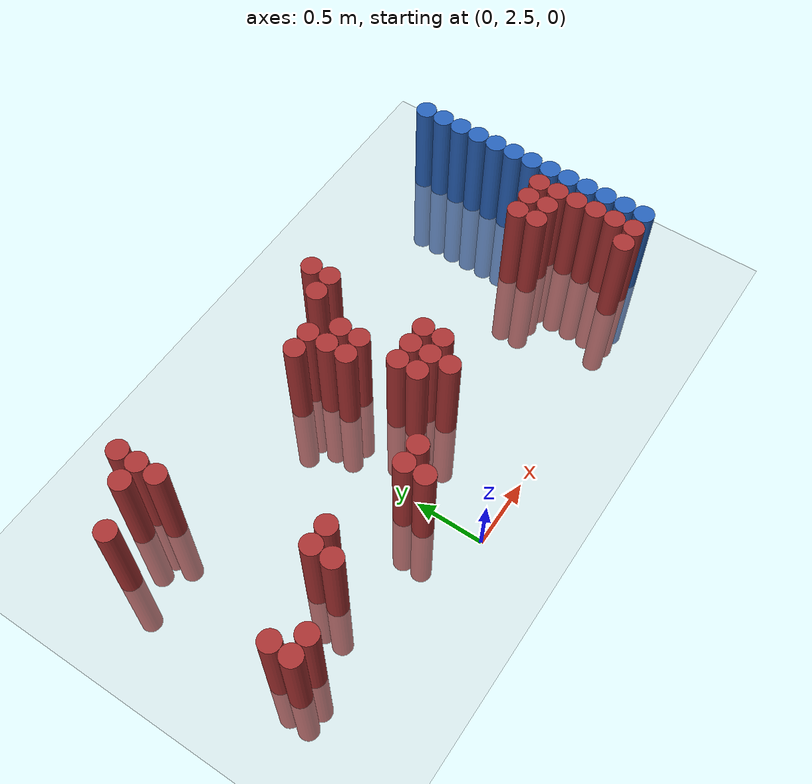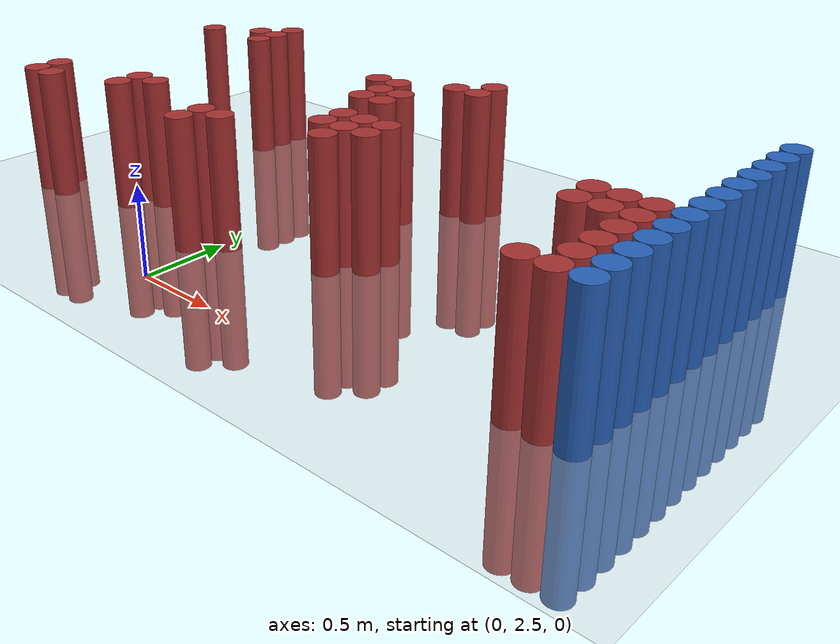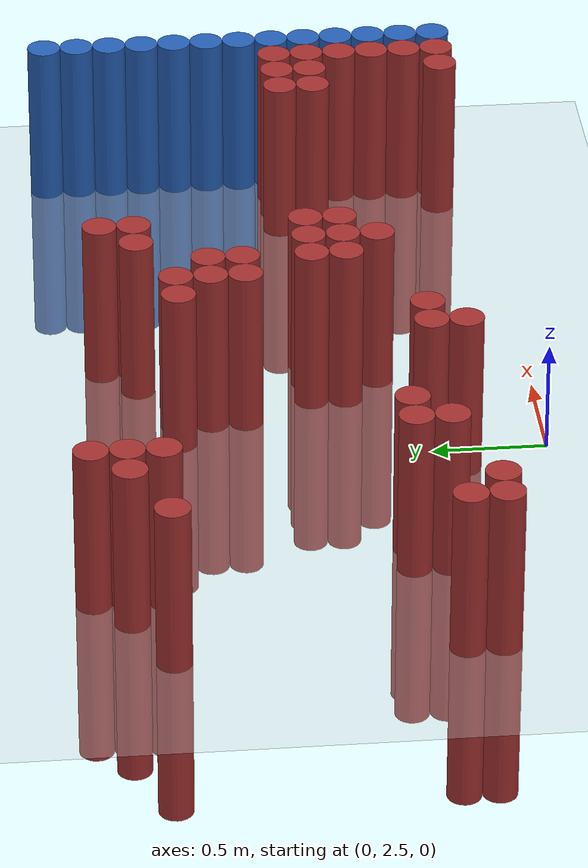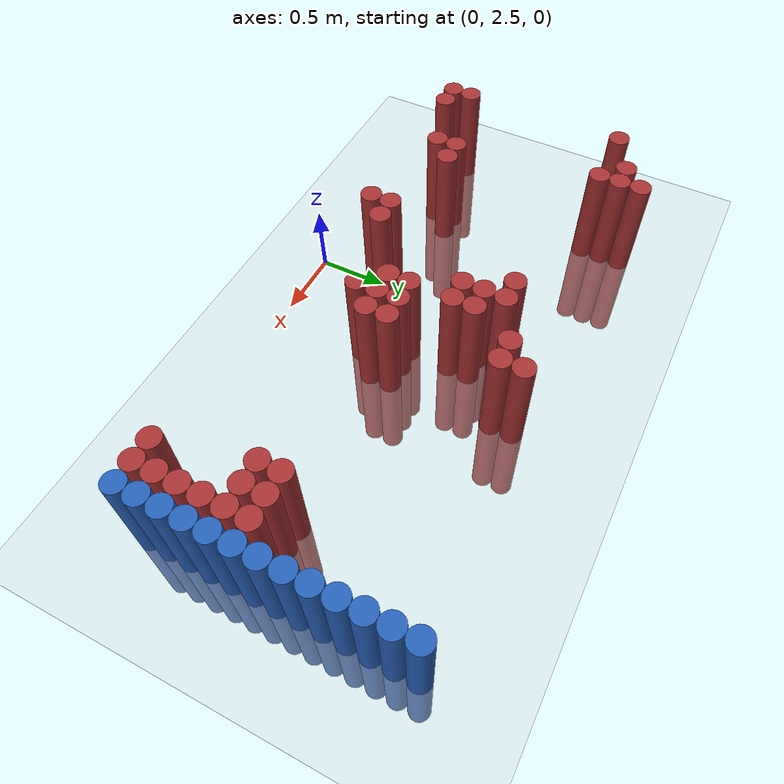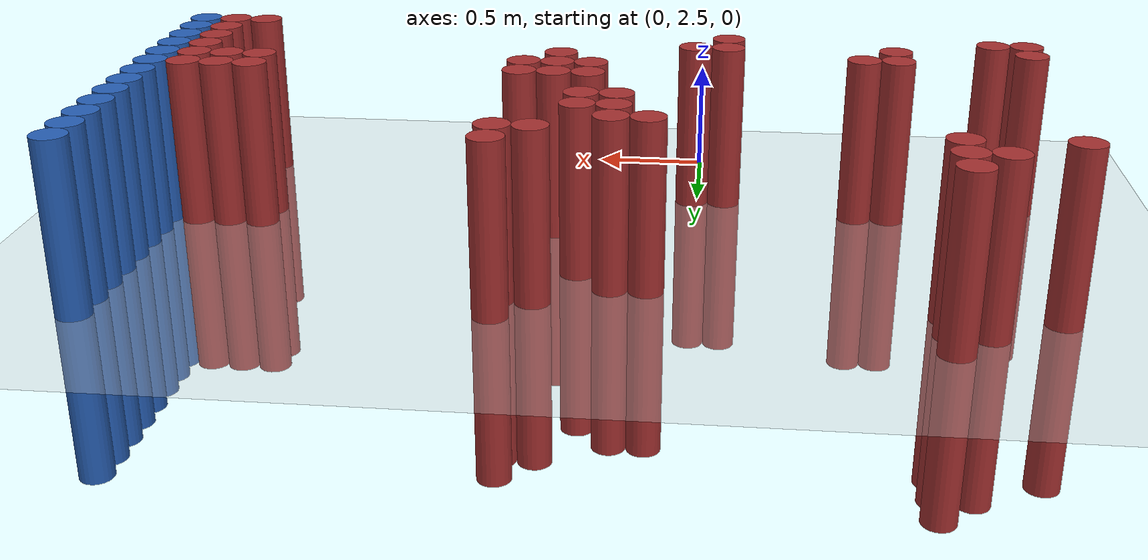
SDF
<sdf version="1.6">
 <world name="default">
  <model name="ground_plane">
   <static>1</static>
   <link name="link">
    <collision name="collision">
     <geometry><plane><normal>0 0 1</normal><size>100 100</size></plane></geometry>
     <surface><friction><ode><mu>100</mu><mu2>50</mu2></ode></friction></surface>
    </collision>
    <visual name="visual">
     <cast_shadows>0</cast_shadows>
     <geometry><plane><normal>0 0 1</normal><size>100 100</size></plane></geometry>
     <material>
      <script><uri>file://media/materials/scripts/gazebo.material</uri><name>Gazebo/Grey</name></script>
     </material>
    </visual>
   </link>
  </model>
  <model name="unit_cylinder_159">
   <static>1</static>
   <pose>-1.475000 2.875000 0.000000 0.000000 0.000000 0.000000</pose>
   <link name="link">
    <inertial>
     <mass>1</mass>
     <inertia><ixx>0.145833</ixx><ixy>0</ixy><ixz>0</ixz><iyy>0.145833</iyy><iyz>0</iyz><izz>0.125</izz></inertia>
    </inertial>
    <collision name="collision">
     <geometry><cylinder><radius>0.075000</radius><length>1.5</length></cylinder></geometry>
    </collision>
    <visual name="visual">
     <geometry><cylinder><radius>0.075000</radius><length>1.5</length></cylinder></geometry>
     <material>
      <ambient>0.648000 0.192000 0.192000 1</ambient>
      <diffuse>0.648000 0.192000 0.192000 1</diffuse>
     </material>
     <material>
      <script><name>Gazebo/Grey</name><uri>file://media/materials/scripts/gazebo.material</uri></script>
     </material>
    </visual>
   </link>
  </model>
  <model name="unit_cylinder_160">
   <static>1</static>
   <pose>-1.475000 3.025000 0.000000 0.000000 0.000000 0.000000</pose>
   <link name="link">
    <inertial>
     <mass>1</mass>
     <inertia><ixx>0.145833</ixx><ixy>0</ixy><ixz>0</ixz><iyy>0.145833</iyy><iyz>0</iyz><izz>0.125</izz></inertia>
    </inertial>
    <collision name="collision">
     <geometry><cylinder><radius>0.075000</radius><length>1.5</length></cylinder></geometry>
    </collision>
    <visual name="visual">
     <geometry><cylinder><radius>0.075000</radius><length>1.5</length></cylinder></geometry>
     <material>
      <ambient>0.648000 0.192000 0.192000 1</ambient>
      <diffuse>0.648000 0.192000 0.192000 1</diffuse>
     </material>
     <material>
      <script><name>Gazebo/Grey</name><uri>file://media/materials/scripts/gazebo.material</uri></script>
     </material>
    </visual>
   </link>
  </model>
  <model name="unit_cylinder_161">
   <static>1</static>
   <pose>-1.475000 4.225000 0.000000 0.000000 0.000000 0.000000</pose>
   <link name="link">
    <inertial>
     <mass>1</mass>
     <inertia><ixx>0.145833</ixx><ixy>0</ixy><ixz>0</ixz><iyy>0.145833</iyy><iyz>0</iyz><izz>0.125</izz></inertia>
    </inertial>
    <collision name="collision">
     <geometry><cylinder><radius>0.075000</radius><length>1.5</length></cylinder></geometry>
    </collision>
    <visual name="visual">
     <geometry><cylinder><radius>0.075000</radius><length>1.5</length></cylinder></geometry>
     <material>
      <ambient>0.648000 0.192000 0.192000 1</ambient>
      <diffuse>0.648000 0.192000 0.192000 1</diffuse>
     </material>
     <material>
      <script><name>Gazebo/Grey</name><uri>file://media/materials/scripts/gazebo.material</uri></script>
     </material>
    </visual>
   </link>
  </model>
  <model name="unit_cylinder_164">
   <static>1</static>
   <pose>-1.325000 2.875000 0.000000 0.000000 0.000000 0.000000</pose>
   <link name="link">
    <inertial>
     <mass>1</mass>
     <inertia><ixx>0.145833</ixx><ixy>0</ixy><ixz>0</ixz><iyy>0.145833</iyy><iyz>0</iyz><izz>0.125</izz></inertia>
    </inertial>
    <collision name="collision">
     <geometry><cylinder><radius>0.075000</radius><length>1.5</length></cylinder></geometry>
    </collision>
    <visual name="visual">
     <geometry><cylinder><radius>0.075000</radius><length>1.5</length></cylinder></geometry>
     <material>
      <ambient>0.648000 0.192000 0.192000 1</ambient>
      <diffuse>0.648000 0.192000 0.192000 1</diffuse>
     </material>
     <material>
      <script><name>Gazebo/Grey</name><uri>file://media/materials/scripts/gazebo.material</uri></script>
     </material>
    </visual>
   </link>
  </model>
  <model name="unit_cylinder_168">
   <static>1</static>
   <pose>-1.175000 4.375000 0.000000 0.000000 0.000000 0.000000</pose>
   <link name="link">
    <inertial>
     <mass>1</mass>
     <inertia><ixx>0.145833</ixx><ixy>0</ixy><ixz>0</ixz><iyy>0.145833</iyy><iyz>0</iyz><izz>0.125</izz></inertia>
    </inertial>
    <collision name="collision">
     <geometry><cylinder><radius>0.075000</radius><length>1.5</length></cylinder></geometry>
    </collision>
    <visual name="visual">
     <geometry><cylinder><radius>0.075000</radius><length>1.5</length></cylinder></geometry>
     <material>
      <ambient>0.648000 0.192000 0.192000 1</ambient>
      <diffuse>0.648000 0.192000 0.192000 1</diffuse>
     </material>
     <material>
      <script><name>Gazebo/Grey</name><uri>file://media/materials/scripts/gazebo.material</uri></script>
     </material>
    </visual>
   </link>
  </model>
  <model name="unit_cylinder_171">
   <static>1</static>
   <pose>-1.025000 4.225000 0.000000 0.000000 0.000000 0.000000</pose>
   <link name="link">
    <inertial>
     <mass>1</mass>
     <inertia><ixx>0.145833</ixx><ixy>0</ixy><ixz>0</ixz><iyy>0.145833</iyy><iyz>0</iyz><izz>0.125</izz></inertia>
    </inertial>
    <collision name="collision">
     <geometry><cylinder><radius>0.075000</radius><length>1.5</length></cylinder></geometry>
    </collision>
    <visual name="visual">
     <geometry><cylinder><radius>0.075000</radius><length>1.5</length></cylinder></geometry>
     <material>
      <ambient>0.648000 0.192000 0.192000 1</ambient>
      <diffuse>0.648000 0.192000 0.192000 1</diffuse>
     </material>
     <material>
      <script><name>Gazebo/Grey</name><uri>file://media/materials/scripts/gazebo.material</uri></script>
     </material>
    </visual>
   </link>
  </model>
  <model name="unit_cylinder_172">
   <static>1</static>
   <pose>-1.025000 4.375000 0.000000 0.000000 0.000000 0.000000</pose>
   <link name="link">
    <inertial>
     <mass>1</mass>
     <inertia><ixx>0.145833</ixx><ixy>0</ixy><ixz>0</ixz><iyy>0.145833</iyy><iyz>0</iyz><izz>0.125</izz></inertia>
    </inertial>
    <collision name="collision">
     <geometry><cylinder><radius>0.075000</radius><length>1.5</length></cylinder></geometry>
    </collision>
    <visual name="visual">
     <geometry><cylinder><radius>0.075000</radius><length>1.5</length></cylinder></geometry>
     <material>
      <ambient>0.648000 0.192000 0.192000 1</ambient>
      <diffuse>0.648000 0.192000 0.192000 1</diffuse>
     </material>
     <material>
      <script><name>Gazebo/Grey</name><uri>file://media/materials/scripts/gazebo.material</uri></script>
     </material>
    </visual>
   </link>
  </model>
  <model name="unit_cylinder_173">
   <static>1</static>
   <pose>-1.025000 4.525000 0.000000 0.000000 0.000000 0.000000</pose>
   <link name="link">
    <inertial>
     <mass>1</mass>
     <inertia><ixx>0.145833</ixx><ixy>0</ixy><ixz>0</ixz><iyy>0.145833</iyy><iyz>0</iyz><izz>0.125</izz></inertia>
    </inertial>
    <collision name="collision">
     <geometry><cylinder><radius>0.075000</radius><length>1.5</length></cylinder></geometry>
    </collision>
    <visual name="visual">
     <geometry><cylinder><radius>0.075000</radius><length>1.5</length></cylinder></geometry>
     <material>
      <ambient>0.648000 0.192000 0.192000 1</ambient>
      <diffuse>0.648000 0.192000 0.192000 1</diffuse>
     </material>
     <material>
      <script><name>Gazebo/Grey</name><uri>file://media/materials/scripts/gazebo.material</uri></script>
     </material>
    </visual>
   </link>
  </model>
  <model name="unit_cylinder_176">
   <static>1</static>
   <pose>-0.875000 3.025000 0.000000 0.000000 0.000000 0.000000</pose>
   <link name="link">
    <inertial>
     <mass>1</mass>
     <inertia><ixx>0.145833</ixx><ixy>0</ixy><ixz>0</ixz><iyy>0.145833</iyy><iyz>0</iyz><izz>0.125</izz></inertia>
    </inertial>
    <collision name="collision">
     <geometry><cylinder><radius>0.075000</radius><length>1.5</length></cylinder></geometry>
    </collision>
    <visual name="visual">
     <geometry><cylinder><radius>0.075000</radius><length>1.5</length></cylinder></geometry>
     <material>
      <ambient>0.648000 0.192000 0.192000 1</ambient>
      <diffuse>0.648000 0.192000 0.192000 1</diffuse>
     </material>
     <material>
      <script><name>Gazebo/Grey</name><uri>file://media/materials/scripts/gazebo.material</uri></script>
     </material>
    </visual>
   </link>
  </model>
  <model name="unit_cylinder_177">
   <static>1</static>
   <pose>-0.875000 3.175000 0.000000 0.000000 0.000000 0.000000</pose>
   <link name="link">
    <inertial>
     <mass>1</mass>
     <inertia><ixx>0.145833</ixx><ixy>0</ixy><ixz>0</ixz><iyy>0.145833</iyy><iyz>0</iyz><izz>0.125</izz></inertia>
    </inertial>
    <collision name="collision">
     <geometry><cylinder><radius>0.075000</radius><length>1.5</length></cylinder></geometry>
    </collision>
    <visual name="visual">
     <geometry><cylinder><radius>0.075000</radius><length>1.5</length></cylinder></geometry>
     <material>
      <ambient>0.648000 0.192000 0.192000 1</ambient>
      <diffuse>0.648000 0.192000 0.192000 1</diffuse>
     </material>
     <material>
      <script><name>Gazebo/Grey</name><uri>file://media/materials/scripts/gazebo.material</uri></script>
     </material>
    </visual>
   </link>
  </model>
  <model name="unit_cylinder_182">
   <static>1</static>
   <pose>-0.725000 3.175000 0.000000 0.000000 0.000000 0.000000</pose>
   <link name="link">
    <inertial>
     <mass>1</mass>
     <inertia><ixx>0.145833</ixx><ixy>0</ixy><ixz>0</ixz><iyy>0.145833</iyy><iyz>0</iyz><izz>0.125</izz></inertia>
    </inertial>
    <collision name="collision">
     <geometry><cylinder><radius>0.075000</radius><length>1.5</length></cylinder></geometry>
    </collision>
    <visual name="visual">
     <geometry><cylinder><radius>0.075000</radius><length>1.5</length></cylinder></geometry>
     <material>
      <ambient>0.648000 0.192000 0.192000 1</ambient>
      <diffuse>0.648000 0.192000 0.192000 1</diffuse>
     </material>
     <material>
      <script><name>Gazebo/Grey</name><uri>file://media/materials/scripts/gazebo.material</uri></script>
     </material>
    </visual>
   </link>
  </model>
  <model name="unit_cylinder_191">
   <static>1</static>
   <pose>-0.125000 2.875000 0.000000 0.000000 0.000000 0.000000</pose>
   <link name="link">
    <inertial>
     <mass>1</mass>
     <inertia><ixx>0.145833</ixx><ixy>0</ixy><ixz>0</ixz><iyy>0.145833</iyy><iyz>0</iyz><izz>0.125</izz></inertia>
    </inertial>
    <collision name="collision">
     <geometry><cylinder><radius>0.075000</radius><length>1.5</length></cylinder></geometry>
    </collision>
    <visual name="visual">
     <geometry><cylinder><radius>0.075000</radius><length>1.5</length></cylinder></geometry>
     <material>
      <ambient>0.648000 0.192000 0.192000 1</ambient>
      <diffuse>0.648000 0.192000 0.192000 1</diffuse>
     </material>
     <material>
      <script><name>Gazebo/Grey</name><uri>file://media/materials/scripts/gazebo.material</uri></script>
     </material>
    </visual>
   </link>
  </model>
  <model name="unit_cylinder_192">
   <static>1</static>
   <pose>-0.125000 3.025000 0.000000 0.000000 0.000000 0.000000</pose>
   <link name="link">
    <inertial>
     <mass>1</mass>
     <inertia><ixx>0.145833</ixx><ixy>0</ixy><ixz>0</ixz><iyy>0.145833</iyy><iyz>0</iyz><izz>0.125</izz></inertia>
    </inertial>
    <collision name="collision">
     <geometry><cylinder><radius>0.075000</radius><length>1.5</length></cylinder></geometry>
    </collision>
    <visual name="visual">
     <geometry><cylinder><radius>0.075000</radius><length>1.5</length></cylinder></geometry>
     <material>
      <ambient>0.648000 0.192000 0.192000 1</ambient>
      <diffuse>0.648000 0.192000 0.192000 1</diffuse>
     </material>
     <material>
      <script><name>Gazebo/Grey</name><uri>file://media/materials/scripts/gazebo.material</uri></script>
     </material>
    </visual>
   </link>
  </model>
  <model name="unit_cylinder_193">
   <static>1</static>
   <pose>0.025000 3.025000 0.000000 0.000000 0.000000 0.000000</pose>
   <link name="link">
    <inertial>
     <mass>1</mass>
     <inertia><ixx>0.145833</ixx><ixy>0</ixy><ixz>0</ixz><iyy>0.145833</iyy><iyz>0</iyz><izz>0.125</izz></inertia>
    </inertial>
    <collision name="collision">
     <geometry><cylinder><radius>0.075000</radius><length>1.5</length></cylinder></geometry>
    </collision>
    <visual name="visual">
     <geometry><cylinder><radius>0.075000</radius><length>1.5</length></cylinder></geometry>
     <material>
      <ambient>0.648000 0.192000 0.192000 1</ambient>
      <diffuse>0.648000 0.192000 0.192000 1</diffuse>
     </material>
     <material>
      <script><name>Gazebo/Grey</name><uri>file://media/materials/scripts/gazebo.material</uri></script>
     </material>
    </visual>
   </link>
  </model>
  <model name="unit_cylinder_194">
   <static>1</static>
   <pose>0.175000 4.075000 0.000000 0.000000 0.000000 0.000000</pose>
   <link name="link">
    <inertial>
     <mass>1</mass>
     <inertia><ixx>0.145833</ixx><ixy>0</ixy><ixz>0</ixz><iyy>0.145833</iyy><iyz>0</iyz><izz>0.125</izz></inertia>
    </inertial>
    <collision name="collision">
     <geometry><cylinder><radius>0.075000</radius><length>1.5</length></cylinder></geometry>
    </collision>
    <visual name="visual">
     <geometry><cylinder><radius>0.075000</radius><length>1.5</length></cylinder></geometry>
     <material>
      <ambient>0.648000 0.192000 0.192000 1</ambient>
      <diffuse>0.648000 0.192000 0.192000 1</diffuse>
     </material>
     <material>
      <script><name>Gazebo/Grey</name><uri>file://media/materials/scripts/gazebo.material</uri></script>
     </material>
    </visual>
   </link>
  </model>
  <model name="unit_cylinder_195">
   <static>1</static>
   <pose>0.325000 3.775000 0.000000 0.000000 0.000000 0.000000</pose>
   <link name="link">
    <inertial>
     <mass>1</mass>
     <inertia><ixx>0.145833</ixx><ixy>0</ixy><ixz>0</ixz><iyy>0.145833</iyy><iyz>0</iyz><izz>0.125</izz></inertia>
    </inertial>
    <collision name="collision">
     <geometry><cylinder><radius>0.075000</radius><length>1.5</length></cylinder></geometry>
    </collision>
    <visual name="visual">
     <geometry><cylinder><radius>0.075000</radius><length>1.5</length></cylinder></geometry>
     <material>
      <ambient>0.648000 0.192000 0.192000 1</ambient>
      <diffuse>0.648000 0.192000 0.192000 1</diffuse>
     </material>
     <material>
      <script><name>Gazebo/Grey</name><uri>file://media/materials/scripts/gazebo.material</uri></script>
     </material>
    </visual>
   </link>
  </model>
  <model name="unit_cylinder_196">
   <static>1</static>
   <pose>0.325000 3.925000 0.000000 0.000000 0.000000 0.000000</pose>
   <link name="link">
    <inertial>
     <mass>1</mass>
     <inertia><ixx>0.145833</ixx><ixy>0</ixy><ixz>0</ixz><iyy>0.145833</iyy><iyz>0</iyz><izz>0.125</izz></inertia>
    </inertial>
    <collision name="collision">
     <geometry><cylinder><radius>0.075000</radius><length>1.5</length></cylinder></geometry>
    </collision>
    <visual name="visual">
     <geometry><cylinder><radius>0.075000</radius><length>1.5</length></cylinder></geometry>
     <material>
      <ambient>0.648000 0.192000 0.192000 1</ambient>
      <diffuse>0.648000 0.192000 0.192000 1</diffuse>
     </material>
     <material>
      <script><name>Gazebo/Grey</name><uri>file://media/materials/scripts/gazebo.material</uri></script>
     </material>
    </visual>
   </link>
  </model>
  <model name="unit_cylinder_197">
   <static>1</static>
   <pose>0.325000 4.075000 0.000000 0.000000 0.000000 0.000000</pose>
   <link name="link">
    <inertial>
     <mass>1</mass>
     <inertia><ixx>0.145833</ixx><ixy>0</ixy><ixz>0</ixz><iyy>0.145833</iyy><iyz>0</iyz><izz>0.125</izz></inertia>
    </inertial>
    <collision name="collision">
     <geometry><cylinder><radius>0.075000</radius><length>1.5</length></cylinder></geometry>
    </collision>
    <visual name="visual">
     <geometry><cylinder><radius>0.075000</radius><length>1.5</length></cylinder></geometry>
     <material>
      <ambient>0.648000 0.192000 0.192000 1</ambient>
      <diffuse>0.648000 0.192000 0.192000 1</diffuse>
     </material>
     <material>
      <script><name>Gazebo/Grey</name><uri>file://media/materials/scripts/gazebo.material</uri></script>
     </material>
    </visual>
   </link>
  </model>
  <model name="unit_cylinder_198">
   <static>1</static>
   <pose>0.475000 3.325000 0.000000 0.000000 0.000000 0.000000</pose>
   <link name="link">
    <inertial>
     <mass>1</mass>
     <inertia><ixx>0.145833</ixx><ixy>0</ixy><ixz>0</ixz><iyy>0.145833</iyy><iyz>0</iyz><izz>0.125</izz></inertia>
    </inertial>
    <collision name="collision">
     <geometry><cylinder><radius>0.075000</radius><length>1.5</length></cylinder></geometry>
    </collision>
    <visual name="visual">
     <geometry><cylinder><radius>0.075000</radius><length>1.5</length></cylinder></geometry>
     <material>
      <ambient>0.648000 0.192000 0.192000 1</ambient>
      <diffuse>0.648000 0.192000 0.192000 1</diffuse>
     </material>
     <material>
      <script><name>Gazebo/Grey</name><uri>file://media/materials/scripts/gazebo.material</uri></script>
     </material>
    </visual>
   </link>
  </model>
  <model name="unit_cylinder_199">
   <static>1</static>
   <pose>0.475000 3.475000 0.000000 0.000000 0.000000 0.000000</pose>
   <link name="link">
    <inertial>
     <mass>1</mass>
     <inertia><ixx>0.145833</ixx><ixy>0</ixy><ixz>0</ixz><iyy>0.145833</iyy><iyz>0</iyz><izz>0.125</izz></inertia>
    </inertial>
    <collision name="collision">
     <geometry><cylinder><radius>0.075000</radius><length>1.5</length></cylinder></geometry>
    </collision>
    <visual name="visual">
     <geometry><cylinder><radius>0.075000</radius><length>1.5</length></cylinder></geometry>
     <material>
      <ambient>0.648000 0.192000 0.192000 1</ambient>
      <diffuse>0.648000 0.192000 0.192000 1</diffuse>
     </material>
     <material>
      <script><name>Gazebo/Grey</name><uri>file://media/materials/scripts/gazebo.material</uri></script>
     </material>
    </visual>
   </link>
  </model>
  <model name="unit_cylinder_200">
   <static>1</static>
   <pose>0.475000 3.775000 0.000000 0.000000 0.000000 0.000000</pose>
   <link name="link">
    <inertial>
     <mass>1</mass>
     <inertia><ixx>0.145833</ixx><ixy>0</ixy><ixz>0</ixz><iyy>0.145833</iyy><iyz>0</iyz><izz>0.125</izz></inertia>
    </inertial>
    <collision name="collision">
     <geometry><cylinder><radius>0.075000</radius><length>1.5</length></cylinder></geometry>
    </collision>
    <visual name="visual">
     <geometry><cylinder><radius>0.075000</radius><length>1.5</length></cylinder></geometry>
     <material>
      <ambient>0.648000 0.192000 0.192000 1</ambient>
      <diffuse>0.648000 0.192000 0.192000 1</diffuse>
     </material>
     <material>
      <script><name>Gazebo/Grey</name><uri>file://media/materials/scripts/gazebo.material</uri></script>
     </material>
    </visual>
   </link>
  </model>
  <model name="unit_cylinder_201">
   <static>1</static>
   <pose>0.475000 3.925000 0.000000 0.000000 0.000000 0.000000</pose>
   <link name="link">
    <inertial>
     <mass>1</mass>
     <inertia><ixx>0.145833</ixx><ixy>0</ixy><ixz>0</ixz><iyy>0.145833</iyy><iyz>0</iyz><izz>0.125</izz></inertia>
    </inertial>
    <collision name="collision">
     <geometry><cylinder><radius>0.075000</radius><length>1.5</length></cylinder></geometry>
    </collision>
    <visual name="visual">
     <geometry><cylinder><radius>0.075000</radius><length>1.5</length></cylinder></geometry>
     <material>
      <ambient>0.648000 0.192000 0.192000 1</ambient>
      <diffuse>0.648000 0.192000 0.192000 1</diffuse>
     </material>
     <material>
      <script><name>Gazebo/Grey</name><uri>file://media/materials/scripts/gazebo.material</uri></script>
     </material>
    </visual>
   </link>
  </model>
  <model name="unit_cylinder_202">
   <static>1</static>
   <pose>0.625000 3.175000 0.000000 0.000000 0.000000 0.000000</pose>
   <link name="link">
    <inertial>
     <mass>1</mass>
     <inertia><ixx>0.145833</ixx><ixy>0</ixy><ixz>0</ixz><iyy>0.145833</iyy><iyz>0</iyz><izz>0.125</izz></inertia>
    </inertial>
    <collision name="collision">
     <geometry><cylinder><radius>0.075000</radius><length>1.5</length></cylinder></geometry>
    </collision>
    <visual name="visual">
     <geometry><cylinder><radius>0.075000</radius><length>1.5</length></cylinder></geometry>
     <material>
      <ambient>0.648000 0.192000 0.192000 1</ambient>
      <diffuse>0.648000 0.192000 0.192000 1</diffuse>
     </material>
     <material>
      <script><name>Gazebo/Grey</name><uri>file://media/materials/scripts/gazebo.material</uri></script>
     </material>
    </visual>
   </link>
  </model>
  <model name="unit_cylinder_203">
   <static>1</static>
   <pose>0.625000 3.325000 0.000000 0.000000 0.000000 0.000000</pose>
   <link name="link">
    <inertial>
     <mass>1</mass>
     <inertia><ixx>0.145833</ixx><ixy>0</ixy><ixz>0</ixz><iyy>0.145833</iyy><iyz>0</iyz><izz>0.125</izz></inertia>
    </inertial>
    <collision name="collision">
     <geometry><cylinder><radius>0.075000</radius><length>1.5</length></cylinder></geometry>
    </collision>
    <visual name="visual">
     <geometry><cylinder><radius>0.075000</radius><length>1.5</length></cylinder></geometry>
     <material>
      <ambient>0.648000 0.192000 0.192000 1</ambient>
      <diffuse>0.648000 0.192000 0.192000 1</diffuse>
     </material>
     <material>
      <script><name>Gazebo/Grey</name><uri>file://media/materials/scripts/gazebo.material</uri></script>
     </material>
    </visual>
   </link>
  </model>
  <model name="unit_cylinder_204">
   <static>1</static>
   <pose>0.625000 3.475000 0.000000 0.000000 0.000000 0.000000</pose>
   <link name="link">
    <inertial>
     <mass>1</mass>
     <inertia><ixx>0.145833</ixx><ixy>0</ixy><ixz>0</ixz><iyy>0.145833</iyy><iyz>0</iyz><izz>0.125</izz></inertia>
    </inertial>
    <collision name="collision">
     <geometry><cylinder><radius>0.075000</radius><length>1.5</length></cylinder></geometry>
    </collision>
    <visual name="visual">
     <geometry><cylinder><radius>0.075000</radius><length>1.5</length></cylinder></geometry>
     <material>
      <ambient>0.648000 0.192000 0.192000 1</ambient>
      <diffuse>0.648000 0.192000 0.192000 1</diffuse>
     </material>
     <material>
      <script><name>Gazebo/Grey</name><uri>file://media/materials/scripts/gazebo.material</uri></script>
     </material>
    </visual>
   </link>
  </model>
  <model name="unit_cylinder_205">
   <static>1</static>
   <pose>0.625000 4.225000 0.000000 0.000000 0.000000 0.000000</pose>
   <link name="link">
    <inertial>
     <mass>1</mass>
     <inertia><ixx>0.145833</ixx><ixy>0</ixy><ixz>0</ixz><iyy>0.145833</iyy><iyz>0</iyz><izz>0.125</izz></inertia>
    </inertial>
    <collision name="collision">
     <geometry><cylinder><radius>0.075000</radius><length>1.5</length></cylinder></geometry>
    </collision>
    <visual name="visual">
     <geometry><cylinder><radius>0.075000</radius><length>1.5</length></cylinder></geometry>
     <material>
      <ambient>0.648000 0.192000 0.192000 1</ambient>
      <diffuse>0.648000 0.192000 0.192000 1</diffuse>
     </material>
     <material>
      <script><name>Gazebo/Grey</name><uri>file://media/materials/scripts/gazebo.material</uri></script>
     </material>
    </visual>
   </link>
  </model>
  <model name="unit_cylinder_206">
   <static>1</static>
   <pose>0.775000 3.325000 0.000000 0.000000 0.000000 0.000000</pose>
   <link name="link">
    <inertial>
     <mass>1</mass>
     <inertia><ixx>0.145833</ixx><ixy>0</ixy><ixz>0</ixz><iyy>0.145833</iyy><iyz>0</iyz><izz>0.125</izz></inertia>
    </inertial>
    <collision name="collision">
     <geometry><cylinder><radius>0.075000</radius><length>1.5</length></cylinder></geometry>
    </collision>
    <visual name="visual">
     <geometry><cylinder><radius>0.075000</radius><length>1.5</length></cylinder></geometry>
     <material>
      <ambient>0.648000 0.192000 0.192000 1</ambient>
      <diffuse>0.648000 0.192000 0.192000 1</diffuse>
     </material>
     <material>
      <script><name>Gazebo/Grey</name><uri>file://media/materials/scripts/gazebo.material</uri></script>
     </material>
    </visual>
   </link>
  </model>
  <model name="unit_cylinder_207">
   <static>1</static>
   <pose>0.775000 3.475000 0.000000 0.000000 0.000000 0.000000</pose>
   <link name="link">
    <inertial>
     <mass>1</mass>
     <inertia><ixx>0.145833</ixx><ixy>0</ixy><ixz>0</ixz><iyy>0.145833</iyy><iyz>0</iyz><izz>0.125</izz></inertia>
    </inertial>
    <collision name="collision">
     <geometry><cylinder><radius>0.075000</radius><length>1.5</length></cylinder></geometry>
    </collision>
    <visual name="visual">
     <geometry><cylinder><radius>0.075000</radius><length>1.5</length></cylinder></geometry>
     <material>
      <ambient>0.648000 0.192000 0.192000 1</ambient>
      <diffuse>0.648000 0.192000 0.192000 1</diffuse>
     </material>
     <material>
      <script><name>Gazebo/Grey</name><uri>file://media/materials/scripts/gazebo.material</uri></script>
     </material>
    </visual>
   </link>
  </model>
  <model name="unit_cylinder_208">
   <static>1</static>
   <pose>0.775000 4.225000 0.000000 0.000000 0.000000 0.000000</pose>
   <link name="link">
    <inertial>
     <mass>1</mass>
     <inertia><ixx>0.145833</ixx><ixy>0</ixy><ixz>0</ixz><iyy>0.145833</iyy><iyz>0</iyz><izz>0.125</izz></inertia>
    </inertial>
    <collision name="collision">
     <geometry><cylinder><radius>0.075000</radius><length>1.5</length></cylinder></geometry>
    </collision>
    <visual name="visual">
     <geometry><cylinder><radius>0.075000</radius><length>1.5</length></cylinder></geometry>
     <material>
      <ambient>0.648000 0.192000 0.192000 1</ambient>
      <diffuse>0.648000 0.192000 0.192000 1</diffuse>
     </material>
     <material>
      <script><name>Gazebo/Grey</name><uri>file://media/materials/scripts/gazebo.material</uri></script>
     </material>
    </visual>
   </link>
  </model>
  <model name="unit_cylinder_209">
   <static>1</static>
   <pose>0.775000 4.375000 0.000000 0.000000 0.000000 0.000000</pose>
   <link name="link">
    <inertial>
     <mass>1</mass>
     <inertia><ixx>0.145833</ixx><ixy>0</ixy><ixz>0</ixz><iyy>0.145833</iyy><iyz>0</iyz><izz>0.125</izz></inertia>
    </inertial>
    <collision name="collision">
     <geometry><cylinder><radius>0.075000</radius><length>1.5</length></cylinder></geometry>
    </collision>
    <visual name="visual">
     <geometry><cylinder><radius>0.075000</radius><length>1.5</length></cylinder></geometry>
     <material>
      <ambient>0.648000 0.192000 0.192000 1</ambient>
      <diffuse>0.648000 0.192000 0.192000 1</diffuse>
     </material>
     <material>
      <script><name>Gazebo/Grey</name><uri>file://media/materials/scripts/gazebo.material</uri></script>
     </material>
    </visual>
   </link>
  </model>
  <model name="unit_cylinder_225">
   <static>1</static>
   <pose>1.975000 3.325000 0.000000 0.000000 0.000000 0.000000</pose>
   <link name="link">
    <inertial>
     <mass>1</mass>
     <inertia><ixx>0.145833</ixx><ixy>0</ixy><ixz>0</ixz><iyy>0.145833</iyy><iyz>0</iyz><izz>0.125</izz></inertia>
    </inertial>
    <collision name="collision">
     <geometry><cylinder><radius>0.075000</radius><length>1.5</length></cylinder></geometry>
    </collision>
    <visual name="visual">
     <geometry><cylinder><radius>0.075000</radius><length>1.5</length></cylinder></geometry>
     <material>
      <ambient>0.648000 0.192000 0.192000 1</ambient>
      <diffuse>0.648000 0.192000 0.192000 1</diffuse>
     </material>
     <material>
      <script><name>Gazebo/Grey</name><uri>file://media/materials/scripts/gazebo.material</uri></script>
     </material>
    </visual>
   </link>
  </model>
  <model name="unit_cylinder_226">
   <static>1</static>
   <pose>1.975000 3.475000 0.000000 0.000000 0.000000 0.000000</pose>
   <link name="link">
    <inertial>
     <mass>1</mass>
     <inertia><ixx>0.145833</ixx><ixy>0</ixy><ixz>0</ixz><iyy>0.145833</iyy><iyz>0</iyz><izz>0.125</izz></inertia>
    </inertial>
    <collision name="collision">
     <geometry><cylinder><radius>0.075000</radius><length>1.5</length></cylinder></geometry>
    </collision>
    <visual name="visual">
     <geometry><cylinder><radius>0.075000</radius><length>1.5</length></cylinder></geometry>
     <material>
      <ambient>0.648000 0.192000 0.192000 1</ambient>
      <diffuse>0.648000 0.192000 0.192000 1</diffuse>
     </material>
     <material>
      <script><name>Gazebo/Grey</name><uri>file://media/materials/scripts/gazebo.material</uri></script>
     </material>
    </visual>
   </link>
  </model>
  <model name="unit_cylinder_227">
   <static>1</static>
   <pose>2.125000 2.725000 0.000000 0.000000 0.000000 0.000000</pose>
   <link name="link">
    <inertial>
     <mass>1</mass>
     <inertia><ixx>0.145833</ixx><ixy>0</ixy><ixz>0</ixz><iyy>0.145833</iyy><iyz>0</iyz><izz>0.125</izz></inertia>
    </inertial>
    <collision name="collision">
     <geometry><cylinder><radius>0.075000</radius><length>1.5</length></cylinder></geometry>
    </collision>
    <visual name="visual">
     <geometry><cylinder><radius>0.075000</radius><length>1.5</length></cylinder></geometry>
     <material>
      <ambient>0.648000 0.192000 0.192000 1</ambient>
      <diffuse>0.648000 0.192000 0.192000 1</diffuse>
     </material>
     <material>
      <script><name>Gazebo/Grey</name><uri>file://media/materials/scripts/gazebo.material</uri></script>
     </material>
    </visual>
   </link>
  </model>
  <model name="unit_cylinder_228">
   <static>1</static>
   <pose>2.125000 3.325000 0.000000 0.000000 0.000000 0.000000</pose>
   <link name="link">
    <inertial>
     <mass>1</mass>
     <inertia><ixx>0.145833</ixx><ixy>0</ixy><ixz>0</ixz><iyy>0.145833</iyy><iyz>0</iyz><izz>0.125</izz></inertia>
    </inertial>
    <collision name="collision">
     <geometry><cylinder><radius>0.075000</radius><length>1.5</length></cylinder></geometry>
    </collision>
    <visual name="visual">
     <geometry><cylinder><radius>0.075000</radius><length>1.5</length></cylinder></geometry>
     <material>
      <ambient>0.648000 0.192000 0.192000 1</ambient>
      <diffuse>0.648000 0.192000 0.192000 1</diffuse>
     </material>
     <material>
      <script><name>Gazebo/Grey</name><uri>file://media/materials/scripts/gazebo.material</uri></script>
     </material>
    </visual>
   </link>
  </model>
  <model name="unit_cylinder_229">
   <static>1</static>
   <pose>2.125000 3.475000 0.000000 0.000000 0.000000 0.000000</pose>
   <link name="link">
    <inertial>
     <mass>1</mass>
     <inertia><ixx>0.145833</ixx><ixy>0</ixy><ixz>0</ixz><iyy>0.145833</iyy><iyz>0</iyz><izz>0.125</izz></inertia>
    </inertial>
    <collision name="collision">
     <geometry><cylinder><radius>0.075000</radius><length>1.5</length></cylinder></geometry>
    </collision>
    <visual name="visual">
     <geometry><cylinder><radius>0.075000</radius><length>1.5</length></cylinder></geometry>
     <material>
      <ambient>0.648000 0.192000 0.192000 1</ambient>
      <diffuse>0.648000 0.192000 0.192000 1</diffuse>
     </material>
     <material>
      <script><name>Gazebo/Grey</name><uri>file://media/materials/scripts/gazebo.material</uri></script>
     </material>
    </visual>
   </link>
  </model>
  <model name="unit_cylinder_233">
   <static>1</static>
   <pose>2.275000 2.725000 0.000000 0.000000 0.000000 0.000000</pose>
   <link name="link">
    <inertial>
     <mass>1</mass>
     <inertia><ixx>0.145833</ixx><ixy>0</ixy><ixz>0</ixz><iyy>0.145833</iyy><iyz>0</iyz><izz>0.125</izz></inertia>
    </inertial>
    <collision name="collision">
     <geometry><cylinder><radius>0.075000</radius><length>1.5</length></cylinder></geometry>
    </collision>
    <visual name="visual">
     <geometry><cylinder><radius>0.075000</radius><length>1.5</length></cylinder></geometry>
     <material>
      <ambient>0.648000 0.192000 0.192000 1</ambient>
      <diffuse>0.648000 0.192000 0.192000 1</diffuse>
     </material>
     <material>
      <script><name>Gazebo/Grey</name><uri>file://media/materials/scripts/gazebo.material</uri></script>
     </material>
    </visual>
   </link>
  </model>
  <model name="unit_cylinder_234">
   <static>1</static>
   <pose>2.275000 2.875000 0.000000 0.000000 0.000000 0.000000</pose>
   <link name="link">
    <inertial>
     <mass>1</mass>
     <inertia><ixx>0.145833</ixx><ixy>0</ixy><ixz>0</ixz><iyy>0.145833</iyy><iyz>0</iyz><izz>0.125</izz></inertia>
    </inertial>
    <collision name="collision">
     <geometry><cylinder><radius>0.075000</radius><length>1.5</length></cylinder></geometry>
    </collision>
    <visual name="visual">
     <geometry><cylinder><radius>0.075000</radius><length>1.5</length></cylinder></geometry>
     <material>
      <ambient>0.648000 0.192000 0.192000 1</ambient>
      <diffuse>0.648000 0.192000 0.192000 1</diffuse>
     </material>
     <material>
      <script><name>Gazebo/Grey</name><uri>file://media/materials/scripts/gazebo.material</uri></script>
     </material>
    </visual>
   </link>
  </model>
  <model name="unit_cylinder_235">
   <static>1</static>
   <pose>2.275000 3.025000 0.000000 0.000000 0.000000 0.000000</pose>
   <link name="link">
    <inertial>
     <mass>1</mass>
     <inertia><ixx>0.145833</ixx><ixy>0</ixy><ixz>0</ixz><iyy>0.145833</iyy><iyz>0</iyz><izz>0.125</izz></inertia>
    </inertial>
    <collision name="collision">
     <geometry><cylinder><radius>0.075000</radius><length>1.5</length></cylinder></geometry>
    </collision>
    <visual name="visual">
     <geometry><cylinder><radius>0.075000</radius><length>1.5</length></cylinder></geometry>
     <material>
      <ambient>0.648000 0.192000 0.192000 1</ambient>
      <diffuse>0.648000 0.192000 0.192000 1</diffuse>
     </material>
     <material>
      <script><name>Gazebo/Grey</name><uri>file://media/materials/scripts/gazebo.material</uri></script>
     </material>
    </visual>
   </link>
  </model>
  <model name="unit_cylinder_236">
   <static>1</static>
   <pose>2.275000 3.175000 0.000000 0.000000 0.000000 0.000000</pose>
   <link name="link">
    <inertial>
     <mass>1</mass>
     <inertia><ixx>0.145833</ixx><ixy>0</ixy><ixz>0</ixz><iyy>0.145833</iyy><iyz>0</iyz><izz>0.125</izz></inertia>
    </inertial>
    <collision name="collision">
     <geometry><cylinder><radius>0.075000</radius><length>1.5</length></cylinder></geometry>
    </collision>
    <visual name="visual">
     <geometry><cylinder><radius>0.075000</radius><length>1.5</length></cylinder></geometry>
     <material>
      <ambient>0.648000 0.192000 0.192000 1</ambient>
      <diffuse>0.648000 0.192000 0.192000 1</diffuse>
     </material>
     <material>
      <script><name>Gazebo/Grey</name><uri>file://media/materials/scripts/gazebo.material</uri></script>
     </material>
    </visual>
   </link>
  </model>
  <model name="unit_cylinder_237">
   <static>1</static>
   <pose>2.275000 3.325000 0.000000 0.000000 0.000000 0.000000</pose>
   <link name="link">
    <inertial>
     <mass>1</mass>
     <inertia><ixx>0.145833</ixx><ixy>0</ixy><ixz>0</ixz><iyy>0.145833</iyy><iyz>0</iyz><izz>0.125</izz></inertia>
    </inertial>
    <collision name="collision">
     <geometry><cylinder><radius>0.075000</radius><length>1.5</length></cylinder></geometry>
    </collision>
    <visual name="visual">
     <geometry><cylinder><radius>0.075000</radius><length>1.5</length></cylinder></geometry>
     <material>
      <ambient>0.648000 0.192000 0.192000 1</ambient>
      <diffuse>0.648000 0.192000 0.192000 1</diffuse>
     </material>
     <material>
      <script><name>Gazebo/Grey</name><uri>file://media/materials/scripts/gazebo.material</uri></script>
     </material>
    </visual>
   </link>
  </model>
  <model name="unit_cylinder_238">
   <static>1</static>
   <pose>2.275000 3.475000 0.000000 0.000000 0.000000 0.000000</pose>
   <link name="link">
    <inertial>
     <mass>1</mass>
     <inertia><ixx>0.145833</ixx><ixy>0</ixy><ixz>0</ixz><iyy>0.145833</iyy><iyz>0</iyz><izz>0.125</izz></inertia>
    </inertial>
    <collision name="collision">
     <geometry><cylinder><radius>0.075000</radius><length>1.5</length></cylinder></geometry>
    </collision>
    <visual name="visual">
     <geometry><cylinder><radius>0.075000</radius><length>1.5</length></cylinder></geometry>
     <material>
      <ambient>0.648000 0.192000 0.192000 1</ambient>
      <diffuse>0.648000 0.192000 0.192000 1</diffuse>
     </material>
     <material>
      <script><name>Gazebo/Grey</name><uri>file://media/materials/scripts/gazebo.material</uri></script>
     </material>
    </visual>
   </link>
  </model>
  <model name="unit_cylinder_256">
   <static>1</static>
   <pose>2.425000 2.725000 0.000000 0.000000 0.000000 0.000000</pose>
   <link name="link">
    <inertial>
     <mass>1</mass>
     <inertia><ixx>0.145833</ixx><ixy>0</ixy><ixz>0</ixz><iyy>0.145833</iyy><iyz>0</iyz><izz>0.125</izz></inertia>
    </inertial>
    <collision name="collision">
     <geometry><cylinder><radius>0.075000</radius><length>1.5</length></cylinder></geometry>
    </collision>
    <visual name="visual">
     <geometry><cylinder><radius>0.075000</radius><length>1.5</length></cylinder></geometry>
     <material>
      <ambient>0.152000 0.379000 0.720000 1</ambient>
      <diffuse>0.152000 0.379000 0.720000 1</diffuse>
     </material>
     <material>
      <script><name>Gazebo/Grey</name><uri>file://media/materials/scripts/gazebo.material</uri></script>
     </material>
    </visual>
   </link>
  </model>
  <model name="unit_cylinder_257">
   <static>1</static>
   <pose>2.425000 2.875000 0.000000 0.000000 0.000000 0.000000</pose>
   <link name="link">
    <inertial>
     <mass>1</mass>
     <inertia><ixx>0.145833</ixx><ixy>0</ixy><ixz>0</ixz><iyy>0.145833</iyy><iyz>0</iyz><izz>0.125</izz></inertia>
    </inertial>
    <collision name="collision">
     <geometry><cylinder><radius>0.075000</radius><length>1.5</length></cylinder></geometry>
    </collision>
    <visual name="visual">
     <geometry><cylinder><radius>0.075000</radius><length>1.5</length></cylinder></geometry>
     <material>
      <ambient>0.152000 0.379000 0.720000 1</ambient>
      <diffuse>0.152000 0.379000 0.720000 1</diffuse>
     </material>
     <material>
      <script><name>Gazebo/Grey</name><uri>file://media/materials/scripts/gazebo.material</uri></script>
     </material>
    </visual>
   </link>
  </model>
  <model name="unit_cylinder_258">
   <static>1</static>
   <pose>2.425000 3.025000 0.000000 0.000000 0.000000 0.000000</pose>
   <link name="link">
    <inertial>
     <mass>1</mass>
     <inertia><ixx>0.145833</ixx><ixy>0</ixy><ixz>0</ixz><iyy>0.145833</iyy><iyz>0</iyz><izz>0.125</izz></inertia>
    </inertial>
    <collision name="collision">
     <geometry><cylinder><radius>0.075000</radius><length>1.5</length></cylinder></geometry>
    </collision>
    <visual name="visual">
     <geometry><cylinder><radius>0.075000</radius><length>1.5</length></cylinder></geometry>
     <material>
      <ambient>0.152000 0.379000 0.720000 1</ambient>
      <diffuse>0.152000 0.379000 0.720000 1</diffuse>
     </material>
     <material>
      <script><name>Gazebo/Grey</name><uri>file://media/materials/scripts/gazebo.material</uri></script>
     </material>
    </visual>
   </link>
  </model>
  <model name="unit_cylinder_259">
   <static>1</static>
   <pose>2.425000 3.175000 0.000000 0.000000 0.000000 0.000000</pose>
   <link name="link">
    <inertial>
     <mass>1</mass>
     <inertia><ixx>0.145833</ixx><ixy>0</ixy><ixz>0</ixz><iyy>0.145833</iyy><iyz>0</iyz><izz>0.125</izz></inertia>
    </inertial>
    <collision name="collision">
     <geometry><cylinder><radius>0.075000</radius><length>1.5</length></cylinder></geometry>
    </collision>
    <visual name="visual">
     <geometry><cylinder><radius>0.075000</radius><length>1.5</length></cylinder></geometry>
     <material>
      <ambient>0.152000 0.379000 0.720000 1</ambient>
      <diffuse>0.152000 0.379000 0.720000 1</diffuse>
     </material>
     <material>
      <script><name>Gazebo/Grey</name><uri>file://media/materials/scripts/gazebo.material</uri></script>
     </material>
    </visual>
   </link>
  </model>
  <model name="unit_cylinder_260">
   <static>1</static>
   <pose>2.425000 3.325000 0.000000 0.000000 0.000000 0.000000</pose>
   <link name="link">
    <inertial>
     <mass>1</mass>
     <inertia><ixx>0.145833</ixx><ixy>0</ixy><ixz>0</ixz><iyy>0.145833</iyy><iyz>0</iyz><izz>0.125</izz></inertia>
    </inertial>
    <collision name="collision">
     <geometry><cylinder><radius>0.075000</radius><length>1.5</length></cylinder></geometry>
    </collision>
    <visual name="visual">
     <geometry><cylinder><radius>0.075000</radius><length>1.5</length></cylinder></geometry>
     <material>
      <ambient>0.152000 0.379000 0.720000 1</ambient>
      <diffuse>0.152000 0.379000 0.720000 1</diffuse>
     </material>
     <material>
      <script><name>Gazebo/Grey</name><uri>file://media/materials/scripts/gazebo.material</uri></script>
     </material>
    </visual>
   </link>
  </model>
  <model name="unit_cylinder_261">
   <static>1</static>
   <pose>2.425000 3.475000 0.000000 0.000000 0.000000 0.000000</pose>
   <link name="link">
    <inertial>
     <mass>1</mass>
     <inertia><ixx>0.145833</ixx><ixy>0</ixy><ixz>0</ixz><iyy>0.145833</iyy><iyz>0</iyz><izz>0.125</izz></inertia>
    </inertial>
    <collision name="collision">
     <geometry><cylinder><radius>0.075000</radius><length>1.5</length></cylinder></geometry>
    </collision>
    <visual name="visual">
     <geometry><cylinder><radius>0.075000</radius><length>1.5</length></cylinder></geometry>
     <material>
      <ambient>0.152000 0.379000 0.720000 1</ambient>
      <diffuse>0.152000 0.379000 0.720000 1</diffuse>
     </material>
     <material>
      <script><name>Gazebo/Grey</name><uri>file://media/materials/scripts/gazebo.material</uri></script>
     </material>
    </visual>
   </link>
  </model>
  <model name="unit_cylinder_262">
   <static>1</static>
   <pose>2.425000 3.625000 0.000000 0.000000 0.000000 0.000000</pose>
   <link name="link">
    <inertial>
     <mass>1</mass>
     <inertia><ixx>0.145833</ixx><ixy>0</ixy><ixz>0</ixz><iyy>0.145833</iyy><iyz>0</iyz><izz>0.125</izz></inertia>
    </inertial>
    <collision name="collision">
     <geometry><cylinder><radius>0.075000</radius><length>1.5</length></cylinder></geometry>
    </collision>
    <visual name="visual">
     <geometry><cylinder><radius>0.075000</radius><length>1.5</length></cylinder></geometry>
     <material>
      <ambient>0.152000 0.379000 0.720000 1</ambient>
      <diffuse>0.152000 0.379000 0.720000 1</diffuse>
     </material>
     <material>
      <script><name>Gazebo/Grey</name><uri>file://media/materials/scripts/gazebo.material</uri></script>
     </material>
    </visual>
   </link>
  </model>
  <model name="unit_cylinder_263">
   <static>1</static>
   <pose>2.425000 3.775000 0.000000 0.000000 0.000000 0.000000</pose>
   <link name="link">
    <inertial>
     <mass>1</mass>
     <inertia><ixx>0.145833</ixx><ixy>0</ixy><ixz>0</ixz><iyy>0.145833</iyy><iyz>0</iyz><izz>0.125</izz></inertia>
    </inertial>
    <collision name="collision">
     <geometry><cylinder><radius>0.075000</radius><length>1.5</length></cylinder></geometry>
    </collision>
    <visual name="visual">
     <geometry><cylinder><radius>0.075000</radius><length>1.5</length></cylinder></geometry>
     <material>
      <ambient>0.152000 0.379000 0.720000 1</ambient>
      <diffuse>0.152000 0.379000 0.720000 1</diffuse>
     </material>
     <material>
      <script><name>Gazebo/Grey</name><uri>file://media/materials/scripts/gazebo.material</uri></script>
     </material>
    </visual>
   </link>
  </model>
  <model name="unit_cylinder_264">
   <static>1</static>
   <pose>2.425000 3.925000 0.000000 0.000000 0.000000 0.000000</pose>
   <link name="link">
    <inertial>
     <mass>1</mass>
     <inertia><ixx>0.145833</ixx><ixy>0</ixy><ixz>0</ixz><iyy>0.145833</iyy><iyz>0</iyz><izz>0.125</izz></inertia>
    </inertial>
    <collision name="collision">
     <geometry><cylinder><radius>0.075000</radius><length>1.5</length></cylinder></geometry>
    </collision>
    <visual name="visual">
     <geometry><cylinder><radius>0.075000</radius><length>1.5</length></cylinder></geometry>
     <material>
      <ambient>0.152000 0.379000 0.720000 1</ambient>
      <diffuse>0.152000 0.379000 0.720000 1</diffuse>
     </material>
     <material>
      <script><name>Gazebo/Grey</name><uri>file://media/materials/scripts/gazebo.material</uri></script>
     </material>
    </visual>
   </link>
  </model>
  <model name="unit_cylinder_265">
   <static>1</static>
   <pose>2.425000 4.075000 0.000000 0.000000 0.000000 0.000000</pose>
   <link name="link">
    <inertial>
     <mass>1</mass>
     <inertia><ixx>0.145833</ixx><ixy>0</ixy><ixz>0</ixz><iyy>0.145833</iyy><iyz>0</iyz><izz>0.125</izz></inertia>
    </inertial>
    <collision name="collision">
     <geometry><cylinder><radius>0.075000</radius><length>1.5</length></cylinder></geometry>
    </collision>
    <visual name="visual">
     <geometry><cylinder><radius>0.075000</radius><length>1.5</length></cylinder></geometry>
     <material>
      <ambient>0.152000 0.379000 0.720000 1</ambient>
      <diffuse>0.152000 0.379000 0.720000 1</diffuse>
     </material>
     <material>
      <script><name>Gazebo/Grey</name><uri>file://media/materials/scripts/gazebo.material</uri></script>
     </material>
    </visual>
   </link>
  </model>
  <model name="unit_cylinder_266">
   <static>1</static>
   <pose>2.425000 4.225000 0.000000 0.000000 0.000000 0.000000</pose>
   <link name="link">
    <inertial>
     <mass>1</mass>
     <inertia><ixx>0.145833</ixx><ixy>0</ixy><ixz>0</ixz><iyy>0.145833</iyy><iyz>0</iyz><izz>0.125</izz></inertia>
    </inertial>
    <collision name="collision">
     <geometry><cylinder><radius>0.075000</radius><length>1.5</length></cylinder></geometry>
    </collision>
    <visual name="visual">
     <geometry><cylinder><radius>0.075000</radius><length>1.5</length></cylinder></geometry>
     <material>
      <ambient>0.152000 0.379000 0.720000 1</ambient>
      <diffuse>0.152000 0.379000 0.720000 1</diffuse>
     </material>
     <material>
      <script><name>Gazebo/Grey</name><uri>file://media/materials/scripts/gazebo.material</uri></script>
     </material>
    </visual>
   </link>
  </model>
  <model name="unit_cylinder_267">
   <static>1</static>
   <pose>2.425000 4.375000 0.000000 0.000000 0.000000 0.000000</pose>
   <link name="link">
    <inertial>
     <mass>1</mass>
     <inertia><ixx>0.145833</ixx><ixy>0</ixy><ixz>0</ixz><iyy>0.145833</iyy><iyz>0</iyz><izz>0.125</izz></inertia>
    </inertial>
    <collision name="collision">
     <geometry><cylinder><radius>0.075000</radius><length>1.5</length></cylinder></geometry>
    </collision>
    <visual name="visual">
     <geometry><cylinder><radius>0.075000</radius><length>1.5</length></cylinder></geometry>
     <material>
      <ambient>0.152000 0.379000 0.720000 1</ambient>
      <diffuse>0.152000 0.379000 0.720000 1</diffuse>
     </material>
     <material>
      <script><name>Gazebo/Grey</name><uri>file://media/materials/scripts/gazebo.material</uri></script>
     </material>
    </visual>
   </link>
  </model>
  <model name="unit_cylinder_268">
   <static>1</static>
   <pose>2.425000 4.525000 0.000000 0.000000 0.000000 0.000000</pose>
   <link name="link">
    <inertial>
     <mass>1</mass>
     <inertia><ixx>0.145833</ixx><ixy>0</ixy><ixz>0</ixz><iyy>0.145833</iyy><iyz>0</iyz><izz>0.125</izz></inertia>
    </inertial>
    <collision name="collision">
     <geometry><cylinder><radius>0.075000</radius><length>1.5</length></cylinder></geometry>
    </collision>
    <visual name="visual">
     <geometry><cylinder><radius>0.075000</radius><length>1.5</length></cylinder></geometry>
     <material>
      <ambient>0.152000 0.379000 0.720000 1</ambient>
      <diffuse>0.152000 0.379000 0.720000 1</diffuse>
     </material>
     <material>
      <script><name>Gazebo/Grey</name><uri>file://media/materials/scripts/gazebo.material</uri></script>
     </material>
    </visual>
   </link>
  </model>
 </world>
</sdf>
